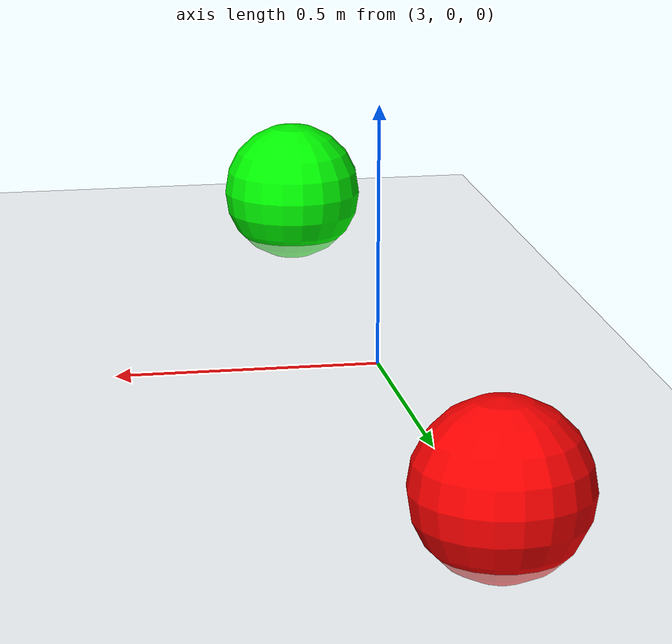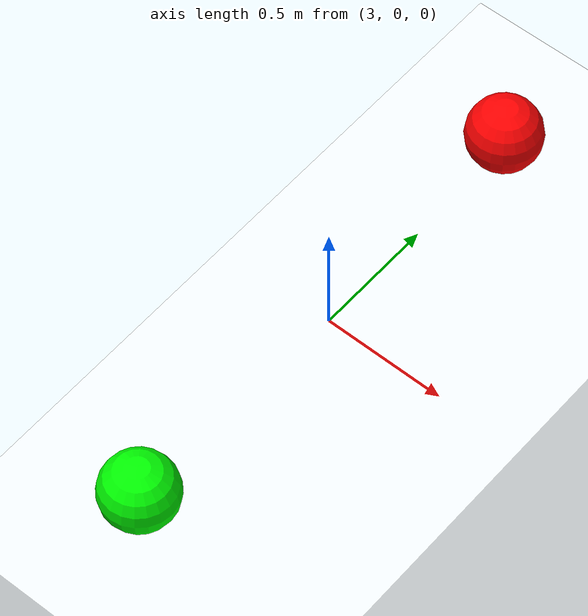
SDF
<?xml version="1.0" ?>
<sdf version="1.6">
  <world name="autonomy_world">

    <!-- Configure the scene -->
    <scene>
      <!-- For turquoise ambient -->
      <sky></sky>
      <grid>false</grid>
      <ambient>0.0 1 1</ambient>
      <background>0.0 0.7 0.8</background>
    </scene>

    <spherical_coordinates>
      <surface_model>EARTH_WGS84</surface_model>
      <world_frame_orientation>ENU</world_frame_orientation>
      <latitude_deg>33.724223</latitude_deg>
      <longitude_deg>-84.3880</longitude_deg>
      <elevation>16.0</elevation>
      <heading_deg>0.0</heading_deg>
    </spherical_coordinates>

    <!-- Configure the world physics -->
    <physics name="1ms" type="dart">
      <max_step_size>0.001</max_step_size>
      <real_time_factor>1.0</real_time_factor>
    </physics>
    <plugin
      filename="gz-sim-physics-system"
      name="gz::sim::systems::Physics">
    </plugin>
    <plugin
      filename="gz-sim-sensors-system"
      name="gz::sim::systems::Sensors">
      <render_engine>ogre2</render_engine>
    </plugin>
    <plugin
      filename="gz-sim-user-commands-system"
      name="gz::sim::systems::UserCommands">
    </plugin>
    <plugin
      filename="gz-sim-scene-broadcaster-system"
      name="gz::sim::systems::SceneBroadcaster">
    </plugin>
    <plugin
      filename="gz-sim-buoyancy-system"
      name="gz::sim::systems::Buoyancy">
      <graded_buoyancy>
        <default_density>1000</default_density>
        <density_change>
          <above_depth>0</above_depth>
          <density>1</density>
        </density_change>
      </graded_buoyancy>
    </plugin>
    <plugin filename="gz-sim-imu-system"
            name="gz::sim::systems::Imu">
    </plugin>
    <plugin
      filename="gz-sim-air-pressure-system"
      name="gz::sim::systems::AirPressure">
    </plugin>
    <plugin
      filename="gz-sim-navsat-system"
      name="gz::sim::systems::NavSat">
    </plugin>

    <!-- Configure the GUI -->
    <gui>
      <!-- For some reason this is required to get the GUI to render the scene ambient/background -->
      <plugin filename="MinimalScene" name="3D View">
        <gz-gui>
          <title>3D View</title>
          <property type="bool" key="showTitleBar">false</property>
          <property type="string" key="state">docked</property>
        </gz-gui>

        <engine>ogre2</engine>
        <scene>scene</scene>
        <ambient>0.0 1.0 1.0</ambient>
        <background_color>0.0 0.7 0.8</background_color>
      </plugin>

      <!-- Plugins that add functionality to the scene (these got removed when using the MinimalScene Plugin so we have to re-add them-->
      <plugin filename="EntityContextMenuPlugin" name="Entity context menu">
        <gz-gui>
          <property key="state" type="string">floating</property>
          <property key="width" type="double">5</property>
          <property key="height" type="double">5</property>
          <property key="showTitleBar" type="bool">false</property>
        </gz-gui>
      </plugin>
      <plugin filename="GzSceneManager" name="Scene Manager">
        <gz-gui>
          <property key="resizable" type="bool">false</property>
          <property key="width" type="double">5</property>
          <property key="height" type="double">5</property>
          <property key="state" type="string">floating</property>
          <property key="showTitleBar" type="bool">false</property>
        </gz-gui>
      </plugin>
      <plugin filename="InteractiveViewControl" name="Interactive view control">
        <gz-gui>
          <property key="resizable" type="bool">false</property>
          <property key="width" type="double">5</property>
          <property key="height" type="double">5</property>
          <property key="state" type="string">floating</property>
          <property key="showTitleBar" type="bool">false</property>
        </gz-gui>
      </plugin>
      <plugin filename="CameraTracking" name="Camera Tracking">
        <gz-gui>
          <property key="resizable" type="bool">false</property>
          <property key="width" type="double">5</property>
          <property key="height" type="double">5</property>
          <property key="state" type="string">floating</property>
          <property key="showTitleBar" type="bool">false</property>
        </gz-gui>
      </plugin>

      <plugin filename="Spawn" name="Spawn Entities">
        <gz-gui>
          <property key="resizable" type="bool">false</property>
          <property key="width" type="double">5</property>
          <property key="height" type="double">5</property>
          <property key="state" type="string">floating</property>
          <property key="showTitleBar" type="bool">false</property>
        </gz-gui>
      </plugin>

      <!-- World control -->
      <plugin filename="WorldControl" name="World control">
        <gz-gui>
          <title>World control</title>
          <property type="bool" key="showTitleBar">false</property>
          <property type="bool" key="resizable">false</property>
          <property type="double" key="height">72</property>
          <property type="double" key="z">1</property>

          <property type="string" key="state">floating</property>
          <anchors target="3D View">
            <line own="left" target="left"/>
            <line own="bottom" target="bottom"/>
          </anchors>
        </gz-gui>

        <play_pause>true</play_pause>
        <step>true</step>
        <start_paused>true</start_paused>
        <use_event>true</use_event>

      </plugin>

      <!-- World statistics -->
      <plugin filename="WorldStats" name="World stats">
        <gz-gui>
          <title>World stats</title>
          <property type="bool" key="showTitleBar">false</property>
          <property type="bool" key="resizable">false</property>
          <property type="double" key="height">110</property>
          <property type="double" key="width">290</property>
          <property type="double" key="z">1</property>

          <property type="string" key="state">floating</property>
          <anchors target="3D View">
            <line own="right" target="right"/>
            <line own="bottom" target="bottom"/>
          </anchors>
        </gz-gui>

        <sim_time>true</sim_time>
        <real_time>true</real_time>
        <real_time_factor>true</real_time_factor>
        <iterations>true</iterations>
      </plugin>

      <!-- Insert simple shapes -->
      <plugin filename="Shapes" name="Shapes">
        <gz-gui>
          <property key="resizable" type="bool">false</property>
          <property key="x" type="double">0</property>
          <property key="y" type="double">0</property>
          <property key="width" type="double">250</property>
          <property key="height" type="double">50</property>
          <property key="state" type="string">floating</property>
          <property key="showTitleBar" type="bool">false</property>
          <property key="cardBackground" type="string">#666666</property>
        </gz-gui>
      </plugin>

      <!-- Inspector -->
      <plugin filename="ComponentInspector" name="Component inspector">
        <gz-gui>
          <property type="string" key="state">docked</property>
        </gz-gui>
      </plugin>

      <!-- Entity tree -->
      <plugin filename="EntityTree" name="Entity tree">
        <gz-gui>
          <property type="string" key="state">docked</property>
        </gz-gui>
      </plugin>

      <!-- Translate/Rotate Tools -->
      <plugin filename="TransformControl" name="Transform control">
        <gz-gui>
          <property key="resizable" type="bool">false</property>
          <property key="x" type="double">0</property>
          <property key="y" type="double">50</property>
          <property key="width" type="double">250</property>
          <property key="height" type="double">50</property>
          <property key="state" type="string">floating</property>
          <property key="showTitleBar" type="bool">false</property>
          <property key="cardBackground" type="string">#777777</property>
        </gz-gui>
      </plugin>

    </gui>

    <!-- Simulated Water Surface -->
    <model name="translucent_box">
      <static>true</static>
      <pose> 0 0 -2 0 0 0</pose>
      <link name="link">
        <visual name="visual">
          <geometry>
            <box>
              <size>50 50 4</size>
            </box>
          </geometry>
          <material>
            <ambient>1 1 1 0.5</ambient>
            <diffuse>1 1 1 0.5</diffuse>
            <transparency>0.8</transparency>
          </material>
        </visual>
      </link>
    </model>

    <!-- 3D MODELS -->
    <light type="directional" name="sun">
      <cast_shadows>true</cast_shadows>
      <pose>-5 0 10 0 0 0</pose>
      <diffuse>0.9 0.8 0.8 1</diffuse>
      <specular>0.2 0.2 0.2 1</specular>
      <attenuation>
        <range>1000</range>
        <constant>0.9</constant>
        <linear>0.01</linear>
        <quadratic>0.001</quadratic>
      </attenuation>
      <direction>0.5 0.1 -0.9</direction>
    </light>

    <model name="red_buoy">
      <pose>3 1 0.1 0 0 0</pose>
      <static>true</static>
      <link name="link">
        <visual name="visual">
          <geometry>
            <sphere>
              <radius>0.15</radius>
            </sphere>
          </geometry>
          <material>
            <ambient>1 0 0 1</ambient>
            <diffuse>1 0 0 1</diffuse>
          </material>
        </visual>
        <collision name="collision">
          <geometry>
            <sphere>
              <radius>0.15</radius>
            </sphere>
          </geometry>
        </collision>
      </link>
    </model>

    <model name="green_buoy">
      <pose>3 -1 0.1 0 0 0</pose>
      <static>true</static>
      <link name="link">
        <visual name="visual">
          <geometry>
            <sphere>
              <radius>0.15</radius>
            </sphere>
          </geometry>
          <material>
            <ambient>0 1 0 1</ambient>
            <diffuse>0 1 0 1</diffuse>
          </material>
        </visual>
        <collision name="collision">
          <geometry>
            <sphere>
              <radius>0.15</radius>
            </sphere>
          </geometry>
        </collision>
      </link>
    </model>

  </world>
</sdf>
